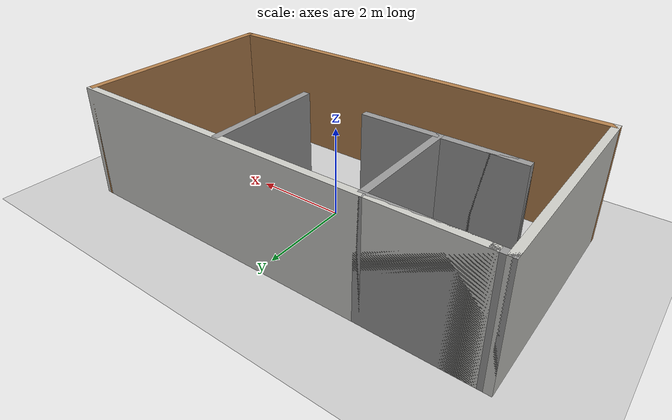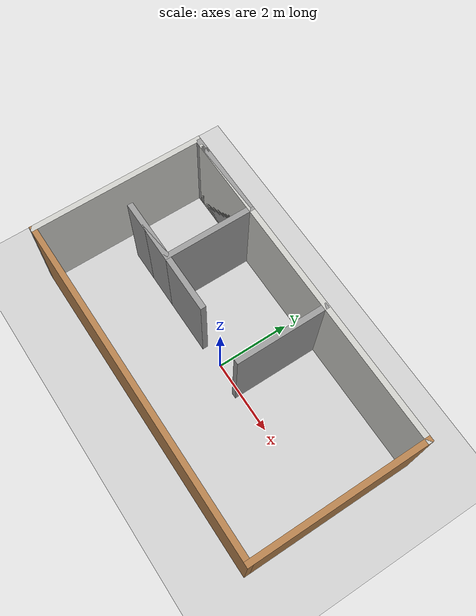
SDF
<sdf version="1.6">
 <world name="default">
  <light name="sun" type="directional">
   <pose>0 0 10 0 -0 0</pose>
   <diffuse>0.8 0.8 0.8 1</diffuse>
   <specular>0.2 0.2 0.2 1</specular>
   <attenuation>
    <range>1000</range>
    <constant>0.9</constant>
    <linear>0.01</linear>
    <quadratic>0.001</quadratic>
   </attenuation>
   <direction>-0.5 0.1 -0.9</direction>
  </light>
  <model name="ground_plane">
   <static>1</static>
   <link name="link">
    <collision name="collision">
     <geometry><plane><normal>0 0 1</normal><size>100 100</size></plane></geometry>
     <surface>
      <contact><collide_bitmask>65535</collide_bitmask></contact>
      <friction><ode><mu>100</mu><mu2>50</mu2></ode></friction>
     </surface>
    </collision>
    <visual name="visual">
     <cast_shadows>0</cast_shadows>
     <geometry><plane><normal>0 0 1</normal><size>100 100</size></plane></geometry>
     <material>
      <script><uri>file://media/materials/scripts/gazebo.material</uri><name>Gazebo/Grey</name></script>
     </material>
    </visual>
   </link>
  </model>
  <gravity>0 0 -9.8</gravity>
  <magnetic_field>6e-06 2.3e-05 -4.2e-05</magnetic_field>
  <atmosphere type="adiabatic"/>
  <physics name="default_physics" default="0" type="ode">
   <max_step_size>0.001</max_step_size>
   <real_time_factor>1</real_time_factor>
   <real_time_update_rate>1000</real_time_update_rate>
  </physics>
  <scene><ambient>0.4 0.4 0.4 1</ambient><background>0.7 0.7 0.7 1</background><shadows>1</shadows></scene>
  <spherical_coordinates>
   <surface_model>EARTH_WGS84</surface_model>
   <latitude_deg>0</latitude_deg>
   <longitude_deg>0</longitude_deg>
   <elevation>0</elevation>
   <heading_deg>0</heading_deg>
  </spherical_coordinates>
  <model name="house">
   <link name="Wall_10">
    <collision name="Wall_10_Collision">
     <geometry><box><size>1.75 0.15 2.5</size></box></geometry>
     <pose>0 0 1.25 0 -0 0</pose>
    </collision>
    <visual name="Wall_10_Visual">
     <pose>0 0 1.25 0 -0 0</pose>
     <geometry><box><size>1.75 0.15 2.5</size></box></geometry>
     <material>
      <script><uri>file://media/materials/scripts/gazebo.material</uri><name>Gazebo/Grey</name></script>
      <ambient>1 1 1 1</ambient>
     </material>
     <meta><layer>0</layer></meta>
    </visual>
    <pose>-3 -0.05 0 0 -0 3.14159</pose>
   </link>
   <link name="Wall_11">
    <collision name="Wall_11_Collision">
     <geometry><box><size>3.25 0.15 2.5</size></box></geometry>
     <pose>0 0 1.25 0 -0 0</pose>
    </collision>
    <visual name="Wall_11_Visual">
     <pose>0 0 1.25 0 -0 0</pose>
     <geometry><box><size>3.25 0.15 2.5</size></box></geometry>
     <material>
      <script><uri>file://media/materials/scripts/gazebo.material</uri><name>Gazebo/Grey</name></script>
      <ambient>1 1 1 1</ambient>
     </material>
     <meta><layer>0</layer></meta>
    </visual>
    <pose>-2.25 -0.05 0 0 -0 0</pose>
   </link>
   <link name="Wall_13">
    <collision name="Wall_13_Collision">
     <geometry><box><size>2.5 0.15 2.5</size></box></geometry>
     <pose>0 0 1.25 0 -0 0</pose>
    </collision>
    <visual name="Wall_13_Visual">
     <pose>0 0 1.25 0 -0 0</pose>
     <geometry><box><size>2.5 0.15 2.5</size></box></geometry>
     <material>
      <script><uri>file://media/materials/scripts/gazebo.material</uri><name>Gazebo/Grey</name></script>
      <ambient>1 1 1 1</ambient>
     </material>
     <meta><layer>0</layer></meta>
    </visual>
    <pose>0.85 1.095 0 0 -0 -1.5708</pose>
   </link>
   <link name="Wall_3">
    <collision name="Wall_3_Collision">
     <geometry><box><size>9 0.15 2.5</size></box></geometry>
     <pose>0 0 1.25 0 -0 0</pose>
    </collision>
    <visual name="Wall_3_Visual">
     <pose>0 0 1.25 0 -0 0</pose>
     <geometry><box><size>9 0.15 2.5</size></box></geometry>
     <material>
      <script><uri>file://media/materials/scripts/gazebo.material</uri><name>Gazebo/CeilingTiled</name></script>
      <ambient>1 1 1 1</ambient>
     </material>
     <meta><layer>0</layer></meta>
    </visual>
    <pose>0.125 2.3 0 0 -0 0</pose>
   </link>
   <link name="Wall_4">
    <collision name="Wall_4_Collision">
     <geometry><box><size>4.75 0.15 2.5</size></box></geometry>
     <pose>0 0 1.25 0 -0 0</pose>
    </collision>
    <visual name="Wall_4_Visual">
     <pose>0 0 1.25 0 -0 0</pose>
     <geometry><box><size>4.75 0.15 2.5</size></box></geometry>
     <material>
      <script><uri>file://media/materials/scripts/gazebo.material</uri><name>Gazebo/Wood</name></script>
      <ambient>1 1 1 1</ambient>
     </material>
     <meta><layer>0</layer></meta>
    </visual>
    <pose>4.55 -0 0 0 -0 -1.5708</pose>
   </link>
   <link name="Wall_5">
    <collision name="Wall_5_Collision">
     <geometry><box><size>9.25 0.15 2.5</size></box></geometry>
     <pose>0 0 1.25 0 -0 0</pose>
    </collision>
    <visual name="Wall_5_Visual">
     <pose>0 0 1.25 0 -0 0</pose>
     <geometry><box><size>9.25 0.15 2.5</size></box></geometry>
     <material>
      <script><uri>file://media/materials/scripts/gazebo.material</uri><name>Gazebo/Wood</name></script>
      <ambient>1 1 1 1</ambient>
     </material>
     <meta><layer>0</layer></meta>
    </visual>
    <pose>0 -2.3 0 0 -0 3.14159</pose>
   </link>
   <link name="Wall_6">
    <collision name="Wall_6_Collision">
     <geometry><box><size>4.75 0.15 2.5</size></box></geometry>
     <pose>0 0 1.25 0 -0 0</pose>
    </collision>
    <visual name="Wall_6_Visual">
     <pose>0 0 1.25 0 -0 0</pose>
     <geometry><box><size>4.75 0.15 2.5</size></box></geometry>
     <material>
      <script><uri>file://media/materials/scripts/gazebo.material</uri><name>Gazebo/CeilingTiled</name></script>
      <ambient>1 1 1 1</ambient>
     </material>
     <meta><layer>0</layer></meta>
    </visual>
    <pose>-4.55 -0 0 0 -0 1.5708</pose>
   </link>
   <link name="Wall_7">
    <collision name="Wall_7_Collision">
     <geometry><box><size>0.4 0.15 2.5</size></box></geometry>
     <pose>0 0 1.25 0 -0 0</pose>
    </collision>
    <visual name="Wall_7_Visual">
     <pose>0 0 1.25 0 -0 0</pose>
     <geometry><box><size>0.4 0.15 2.5</size></box></geometry>
     <material>
      <script><uri>file://media/materials/scripts/gazebo.material</uri><name>Gazebo/Grey</name></script>
      <ambient>1 1 1 1</ambient>
     </material>
     <meta><layer>0</layer></meta>
    </visual>
    <pose>-4.425 2.3 0 0 -0 0</pose>
   </link>
   <link name="Wall_8">
    <collision name="Wall_8_Collision">
     <geometry><box><size>2.25 0.15 2.5</size></box></geometry>
     <pose>0 0 1.25 0 -0 0</pose>
    </collision>
    <visual name="Wall_8_Visual">
     <pose>0 0 1.25 0 -0 0</pose>
     <geometry><box><size>2.25 0.15 2.5</size></box></geometry>
     <material>
      <script><uri>file://media/materials/scripts/gazebo.material</uri><name>Gazebo/Grey</name></script>
      <ambient>1 1 1 1</ambient>
     </material>
     <meta><layer>0</layer></meta>
    </visual>
    <pose>-3.25 2.3 0 0 -0 0</pose>
   </link>
   <link name="Wall_9">
    <collision name="Wall_9_Collision">
     <geometry><box><size>2.5 0.15 2.5</size></box></geometry>
     <pose>0 0 1.25 0 -0 0</pose>
    </collision>
    <visual name="Wall_9_Visual">
     <pose>0 0 1.25 0 -0 0</pose>
     <geometry><box><size>2.5 0.15 2.5</size></box></geometry>
     <material>
      <script><uri>file://media/materials/scripts/gazebo.material</uri><name>Gazebo/Grey</name></script>
      <ambient>1 1 1 1</ambient>
     </material>
     <meta><layer>0</layer></meta>
    </visual>
    <pose>-2.2 1.125 0 0 -0 -1.5708</pose>
   </link>
   <static>1</static>
  </model>
 </world>
</sdf>
